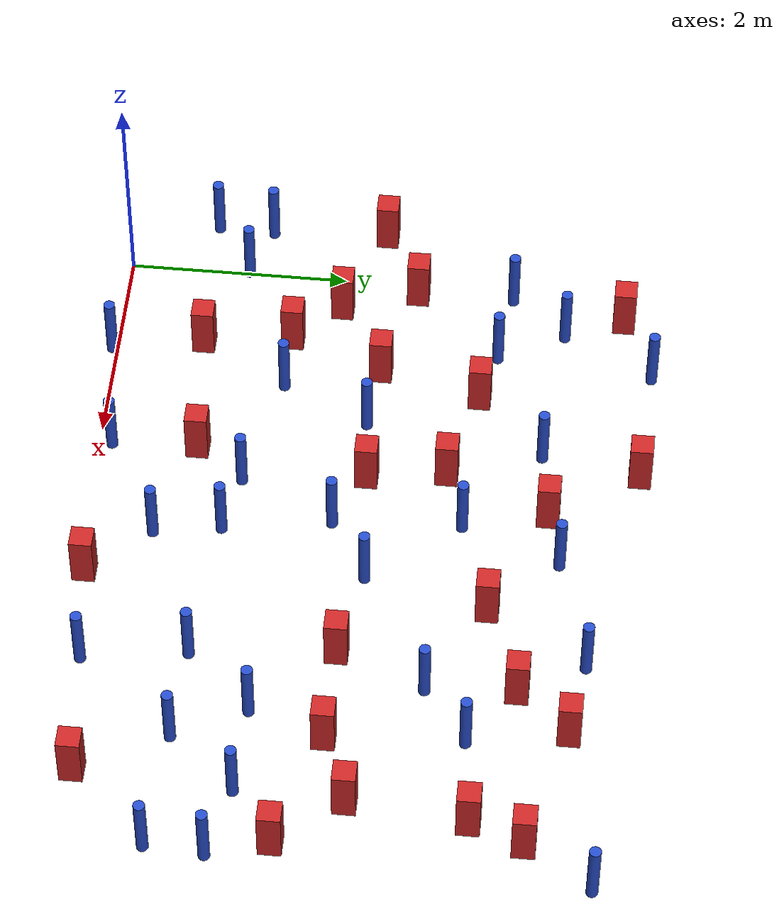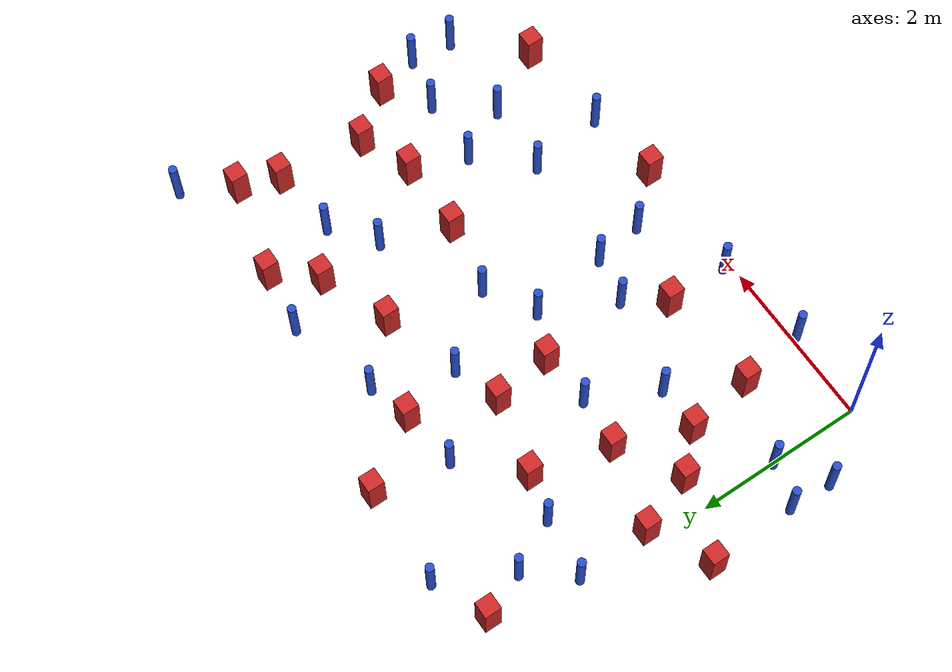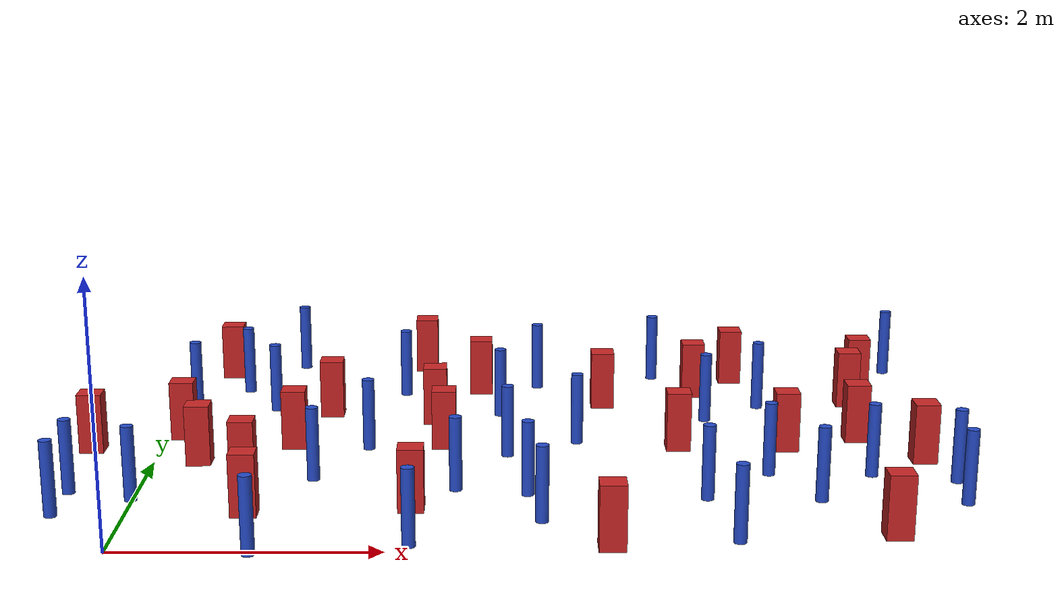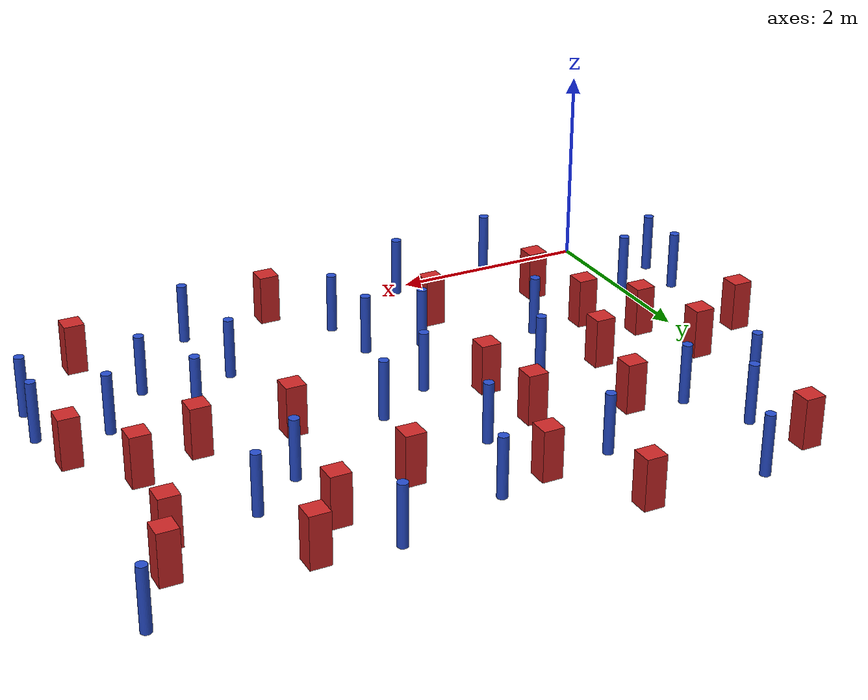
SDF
<sdf version="1.6">
 <model name="dense_47">
  <model name="square_post_obstacle0">
   <static>true</static>
   <pose>2.14950272493 0.887067691015 -6.11067671241e-07 -5.50515727128e-06 -8.79689657224e-07 2.37013304536e-05</pose>
   <link name="link">
    <pose>0 0 0.25 0 -0 0</pose>
    <inertial>
     <mass>100</mass>
     <inertia>
      <ixx>0.166667</ixx>
      <ixy>0</ixy>
      <ixz>0</ixz>
      <iyy>0.166667</iyy>
      <iyz>0</iyz>
      <izz>0.166667</izz>
     </inertia>
    </inertial>
    <collision name="collision"><geometry><box><size>.2 .2 .5</size></box></geometry></collision>
    <visual name="visual">
     <geometry><box><size>.2 .2 .5</size></box></geometry>
     <material>
      <script><name>Gazebo/Red</name><uri>file://media/materials/scripts/gazebo.material</uri></script>
     </material>
    </visual>
   </link>
  </model>
  <model name="pole_obstacle7">
   <static>true</static>
   <pose>0.109177409694 3.56442572552 -9.47619616065e-06 5.49618799737e-07 2.36310414059e-07 -1.550905348e-07</pose>
   <link name="link">
    <pose>0 0 0.3 0 -0 0</pose>
    <inertial>
     <mass>1</mass>
     <inertia><ixx>0.145833</ixx><ixy>0</ixy><ixz>0</ixz><iyy>0.145833</iyy><iyz>0</iyz><izz>0.125</izz></inertia>
    </inertial>
    <collision name="collision">
     <geometry><cylinder><radius>0.05</radius><length>.6</length></cylinder></geometry>
    </collision>
    <visual name="visual">
     <geometry><cylinder><radius>0.05</radius><length>.6</length></cylinder></geometry>
     <material>
      <script><name>Gazebo/Blue</name><uri>file://media/materials/scripts/gazebo.material</uri></script>
     </material>
    </visual>
   </link>
  </model>
  <model name="pole_obstacle8">
   <static>true</static>
   <pose>4.41853651223 1.09801838335 -9.47619616065e-06 5.49618799738e-07 2.36310414071e-07 -1.55090534796e-07</pose>
   <link name="link">
    <pose>0 0 0.3 0 -0 0</pose>
    <inertial>
     <mass>1</mass>
     <inertia><ixx>0.145833</ixx><ixy>0</ixy><ixz>0</ixz><iyy>0.145833</iyy><iyz>0</iyz><izz>0.125</izz></inertia>
    </inertial>
    <collision name="collision">
     <geometry><cylinder><radius>0.05</radius><length>.6</length></cylinder></geometry>
    </collision>
    <visual name="visual">
     <geometry><cylinder><radius>0.05</radius><length>.6</length></cylinder></geometry>
     <material>
      <script><name>Gazebo/Blue</name><uri>file://media/materials/scripts/gazebo.material</uri></script>
     </material>
    </visual>
   </link>
  </model>
  <model name="square_post_obstacle24">
   <static>true</static>
   <pose>4.30198293495 2.35617730267 -6.11067671241e-07 -5.50515727128e-06 -8.79689657224e-07 2.37013304536e-05</pose>
   <link name="link">
    <pose>0 0 0.25 0 -0 0</pose>
    <inertial>
     <mass>100</mass>
     <inertia>
      <ixx>0.166667</ixx>
      <ixy>0</ixy>
      <ixz>0</ixz>
      <iyy>0.166667</iyy>
      <iyz>0</iyz>
      <izz>0.166667</izz>
     </inertia>
    </inertial>
    <collision name="collision"><geometry><box><size>.2 .2 .5</size></box></geometry></collision>
    <visual name="visual">
     <geometry><box><size>.2 .2 .5</size></box></geometry>
     <material>
      <script><name>Gazebo/Red</name><uri>file://media/materials/scripts/gazebo.material</uri></script>
     </material>
    </visual>
   </link>
  </model>
  <model name="square_post_obstacle27">
   <static>true</static>
   <pose>0.303023351756 4.59528940576 -6.11067671241e-07 -5.50515727128e-06 -8.79689657224e-07 2.37013304536e-05</pose>
   <link name="link">
    <pose>0 0 0.25 0 -0 0</pose>
    <inertial>
     <mass>100</mass>
     <inertia>
      <ixx>0.166667</ixx>
      <ixy>0</ixy>
      <ixz>0</ixz>
      <iyy>0.166667</iyy>
      <iyz>0</iyz>
      <izz>0.166667</izz>
     </inertia>
    </inertial>
    <collision name="collision"><geometry><box><size>.2 .2 .5</size></box></geometry></collision>
    <visual name="visual">
     <geometry><box><size>.2 .2 .5</size></box></geometry>
     <material>
      <script><name>Gazebo/Red</name><uri>file://media/materials/scripts/gazebo.material</uri></script>
     </material>
    </visual>
   </link>
  </model>
  <model name="square_post_obstacle28">
   <static>true</static>
   <pose>4.96574600344 4.38186019826 -6.11067671241e-07 -5.50515727128e-06 -8.79689657224e-07 2.37013304536e-05</pose>
   <link name="link">
    <pose>0 0 0.25 0 -0 0</pose>
    <inertial>
     <mass>100</mass>
     <inertia>
      <ixx>0.166667</ixx>
      <ixy>0</ixy>
      <ixz>0</ixz>
      <iyy>0.166667</iyy>
      <iyz>0</iyz>
      <izz>0.166667</izz>
     </inertia>
    </inertial>
    <collision name="collision"><geometry><box><size>.2 .2 .5</size></box></geometry></collision>
    <visual name="visual">
     <geometry><box><size>.2 .2 .5</size></box></geometry>
     <material>
      <script><name>Gazebo/Red</name><uri>file://media/materials/scripts/gazebo.material</uri></script>
     </material>
    </visual>
   </link>
  </model>
  <model name="pole_obstacle20">
   <static>true</static>
   <pose>2.82236221573 3.30809473298 -9.47619616065e-06 5.49618799737e-07 2.36310414051e-07 -1.55090534807e-07</pose>
   <link name="link">
    <pose>0 0 0.3 0 -0 0</pose>
    <inertial>
     <mass>1</mass>
     <inertia><ixx>0.145833</ixx><ixy>0</ixy><ixz>0</ixz><iyy>0.145833</iyy><iyz>0</iyz><izz>0.125</izz></inertia>
    </inertial>
    <collision name="collision">
     <geometry><cylinder><radius>0.05</radius><length>.6</length></cylinder></geometry>
    </collision>
    <visual name="visual">
     <geometry><cylinder><radius>0.05</radius><length>.6</length></cylinder></geometry>
     <material>
      <script><name>Gazebo/Blue</name><uri>file://media/materials/scripts/gazebo.material</uri></script>
     </material>
    </visual>
   </link>
  </model>
  <model name="pole_obstacle21">
   <static>true</static>
   <pose>1.96439052846 3.95553086636 -9.47619616065e-06 5.49618799737e-07 2.36310414062e-07 -1.55090534799e-07</pose>
   <link name="link">
    <pose>0 0 0.3 0 -0 0</pose>
    <inertial>
     <mass>1</mass>
     <inertia><ixx>0.145833</ixx><ixy>0</ixy><ixz>0</ixz><iyy>0.145833</iyy><iyz>0</iyz><izz>0.125</izz></inertia>
    </inertial>
    <collision name="collision">
     <geometry><cylinder><radius>0.05</radius><length>.6</length></cylinder></geometry>
    </collision>
    <visual name="visual">
     <geometry><cylinder><radius>0.05</radius><length>.6</length></cylinder></geometry>
     <material>
      <script><name>Gazebo/Blue</name><uri>file://media/materials/scripts/gazebo.material</uri></script>
     </material>
    </visual>
   </link>
  </model>
  <model name="pole_obstacle25">
   <static>true</static>
   <pose>3.03722277193 1.20850535161 -9.47619616065e-06 5.49618799737e-07 2.36310414072e-07 -1.55090534793e-07</pose>
   <link name="link">
    <pose>0 0 0.3 0 -0 0</pose>
    <inertial>
     <mass>1</mass>
     <inertia><ixx>0.145833</ixx><ixy>0</ixy><ixz>0</ixz><iyy>0.145833</iyy><iyz>0</iyz><izz>0.125</izz></inertia>
    </inertial>
    <collision name="collision">
     <geometry><cylinder><radius>0.05</radius><length>.6</length></cylinder></geometry>
    </collision>
    <visual name="visual">
     <geometry><cylinder><radius>0.05</radius><length>.6</length></cylinder></geometry>
     <material>
      <script><name>Gazebo/Blue</name><uri>file://media/materials/scripts/gazebo.material</uri></script>
     </material>
    </visual>
   </link>
  </model>
  <model name="square_post_obstacle34">
   <static>true</static>
   <pose>2.64815634647 4.05208043156 -6.11067671241e-07 -5.50515727128e-06 -8.79689657224e-07 2.37013304536e-05</pose>
   <link name="link">
    <pose>0 0 0.25 0 -0 0</pose>
    <inertial>
     <mass>100</mass>
     <inertia>
      <ixx>0.166667</ixx>
      <ixy>0</ixy>
      <ixz>0</ixz>
      <iyy>0.166667</iyy>
      <iyz>0</iyz>
      <izz>0.166667</izz>
     </inertia>
    </inertial>
    <collision name="collision"><geometry><box><size>.2 .2 .5</size></box></geometry></collision>
    <visual name="visual">
     <geometry><box><size>.2 .2 .5</size></box></geometry>
     <material>
      <script><name>Gazebo/Red</name><uri>file://media/materials/scripts/gazebo.material</uri></script>
     </material>
    </visual>
   </link>
  </model>
  <model name="pole_obstacle37">
   <static>true</static>
   <pose>0.829820177629 3.47332278502 -9.47619616065e-06 5.49618799737e-07 2.36310414066e-07 -1.55090534797e-07</pose>
   <link name="link">
    <pose>0 0 0.3 0 -0 0</pose>
    <inertial>
     <mass>1</mass>
     <inertia><ixx>0.145833</ixx><ixy>0</ixy><ixz>0</ixz><iyy>0.145833</iyy><iyz>0</iyz><izz>0.125</izz></inertia>
    </inertial>
    <collision name="collision">
     <geometry><cylinder><radius>0.05</radius><length>.6</length></cylinder></geometry>
    </collision>
    <visual name="visual">
     <geometry><cylinder><radius>0.05</radius><length>.6</length></cylinder></geometry>
     <material>
      <script><name>Gazebo/Blue</name><uri>file://media/materials/scripts/gazebo.material</uri></script>
     </material>
    </visual>
   </link>
  </model>
  <model name="square_post_obstacle39">
   <static>true</static>
   <pose>1.34331770689 3.34765384902 -6.11067671241e-07 -5.50515727128e-06 -8.79689657224e-07 2.37013304536e-05</pose>
   <link name="link">
    <pose>0 0 0.25 0 -0 0</pose>
    <inertial>
     <mass>100</mass>
     <inertia>
      <ixx>0.166667</ixx>
      <ixy>0</ixy>
      <ixz>0</ixz>
      <iyy>0.166667</iyy>
      <iyz>0</iyz>
      <izz>0.166667</izz>
     </inertia>
    </inertial>
    <collision name="collision"><geometry><box><size>.2 .2 .5</size></box></geometry></collision>
    <visual name="visual">
     <geometry><box><size>.2 .2 .5</size></box></geometry>
     <material>
      <script><name>Gazebo/Red</name><uri>file://media/materials/scripts/gazebo.material</uri></script>
     </material>
    </visual>
   </link>
  </model>
  <model name="pole_obstacle43">
   <static>true</static>
   <pose>2.88424724772 2.16712554743 -9.47619616065e-06 5.49618799737e-07 2.36310414051e-07 -1.55090534807e-07</pose>
   <link name="link">
    <pose>0 0 0.3 0 -0 0</pose>
    <inertial>
     <mass>1</mass>
     <inertia><ixx>0.145833</ixx><ixy>0</ixy><ixz>0</ixz><iyy>0.145833</iyy><iyz>0</iyz><izz>0.125</izz></inertia>
    </inertial>
    <collision name="collision">
     <geometry><cylinder><radius>0.05</radius><length>.6</length></cylinder></geometry>
    </collision>
    <visual name="visual">
     <geometry><cylinder><radius>0.05</radius><length>.6</length></cylinder></geometry>
     <material>
      <script><name>Gazebo/Blue</name><uri>file://media/materials/scripts/gazebo.material</uri></script>
     </material>
    </visual>
   </link>
  </model>
  <model name="pole_obstacle45">
   <static>true</static>
   <pose>1.03866609675 -0.046950758375 -9.47619616065e-06 5.49618799737e-07 2.36310414067e-07 -1.55090534796e-07</pose>
   <link name="link">
    <pose>0 0 0.3 0 -0 0</pose>
    <inertial>
     <mass>1</mass>
     <inertia><ixx>0.145833</ixx><ixy>0</ixy><ixz>0</ixz><iyy>0.145833</iyy><iyz>0</iyz><izz>0.125</izz></inertia>
    </inertial>
    <collision name="collision">
     <geometry><cylinder><radius>0.05</radius><length>.6</length></cylinder></geometry>
    </collision>
    <visual name="visual">
     <geometry><cylinder><radius>0.05</radius><length>.6</length></cylinder></geometry>
     <material>
      <script><name>Gazebo/Blue</name><uri>file://media/materials/scripts/gazebo.material</uri></script>
     </material>
    </visual>
   </link>
  </model>
  <model name="square_post_obstacle44">
   <static>true</static>
   <pose>3.73400157712 3.59948972033 -6.11067671241e-07 -5.50515727128e-06 -8.79689657224e-07 2.37013304536e-05</pose>
   <link name="link">
    <pose>0 0 0.25 0 -0 0</pose>
    <inertial>
     <mass>100</mass>
     <inertia>
      <ixx>0.166667</ixx>
      <ixy>0</ixy>
      <ixz>0</ixz>
      <iyy>0.166667</iyy>
      <iyz>0</iyz>
      <izz>0.166667</izz>
     </inertia>
    </inertial>
    <collision name="collision"><geometry><box><size>.2 .2 .5</size></box></geometry></collision>
    <visual name="visual">
     <geometry><box><size>.2 .2 .5</size></box></geometry>
     <material>
      <script><name>Gazebo/Red</name><uri>file://media/materials/scripts/gazebo.material</uri></script>
     </material>
    </visual>
   </link>
  </model>
  <model name="square_post_obstacle52">
   <static>true</static>
   <pose>5.82720724488 2.58055464739 -6.11067671241e-07 -5.50515727128e-06 -8.79689657224e-07 2.37013304536e-05</pose>
   <link name="link">
    <pose>0 0 0.25 0 -0 0</pose>
    <inertial>
     <mass>100</mass>
     <inertia>
      <ixx>0.166667</ixx>
      <ixy>0</ixy>
      <ixz>0</ixz>
      <iyy>0.166667</iyy>
      <iyz>0</iyz>
      <izz>0.166667</izz>
     </inertia>
    </inertial>
    <collision name="collision"><geometry><box><size>.2 .2 .5</size></box></geometry></collision>
    <visual name="visual">
     <geometry><box><size>.2 .2 .5</size></box></geometry>
     <material>
      <script><name>Gazebo/Red</name><uri>file://media/materials/scripts/gazebo.material</uri></script>
     </material>
    </visual>
   </link>
  </model>
  <model name="square_post_obstacle57">
   <static>true</static>
   <pose>0.138514433468 2.68636189492 -6.11067671241e-07 -5.50515727128e-06 -8.79689657224e-07 2.37013304536e-05</pose>
   <link name="link">
    <pose>0 0 0.25 0 -0 0</pose>
    <inertial>
     <mass>100</mass>
     <inertia>
      <ixx>0.166667</ixx>
      <ixy>0</ixy>
      <ixz>0</ixz>
      <iyy>0.166667</iyy>
      <iyz>0</iyz>
      <izz>0.166667</izz>
     </inertia>
    </inertial>
    <collision name="collision"><geometry><box><size>.2 .2 .5</size></box></geometry></collision>
    <visual name="visual">
     <geometry><box><size>.2 .2 .5</size></box></geometry>
     <material>
      <script><name>Gazebo/Red</name><uri>file://media/materials/scripts/gazebo.material</uri></script>
     </material>
    </visual>
   </link>
  </model>
  <model name="pole_obstacle60">
   <static>true</static>
   <pose>1.34278115596 1.57324011732 -9.47619616065e-06 5.49618799737e-07 2.36310414065e-07 -1.55090534798e-07</pose>
   <link name="link">
    <pose>0 0 0.3 0 -0 0</pose>
    <inertial>
     <mass>1</mass>
     <inertia><ixx>0.145833</ixx><ixy>0</ixy><ixz>0</ixz><iyy>0.145833</iyy><iyz>0</iyz><izz>0.125</izz></inertia>
    </inertial>
    <collision name="collision">
     <geometry><cylinder><radius>0.05</radius><length>.6</length></cylinder></geometry>
    </collision>
    <visual name="visual">
     <geometry><cylinder><radius>0.05</radius><length>.6</length></cylinder></geometry>
     <material>
      <script><name>Gazebo/Blue</name><uri>file://media/materials/scripts/gazebo.material</uri></script>
     </material>
    </visual>
   </link>
  </model>
  <model name="square_post_obstacle64">
   <static>true</static>
   <pose>5.71152525341 0.291582715641 -6.11067671241e-07 -5.50515727128e-06 -8.79689657224e-07 2.37013304536e-05</pose>
   <link name="link">
    <pose>0 0 0.25 0 -0 0</pose>
    <inertial>
     <mass>100</mass>
     <inertia>
      <ixx>0.166667</ixx>
      <ixy>0</ixy>
      <ixz>0</ixz>
      <iyy>0.166667</iyy>
      <iyz>0</iyz>
      <izz>0.166667</izz>
     </inertia>
    </inertial>
    <collision name="collision"><geometry><box><size>.2 .2 .5</size></box></geometry></collision>
    <visual name="visual">
     <geometry><box><size>.2 .2 .5</size></box></geometry>
     <material>
      <script><name>Gazebo/Red</name><uri>file://media/materials/scripts/gazebo.material</uri></script>
     </material>
    </visual>
   </link>
  </model>
  <model name="pole_obstacle66">
   <static>true</static>
   <pose>0.947929157784 4.87894180601 -9.47619616065e-06 5.49618799737e-07 2.36310414065e-07 -1.55090534796e-07</pose>
   <link name="link">
    <pose>0 0 0.3 0 -0 0</pose>
    <inertial>
     <mass>1</mass>
     <inertia><ixx>0.145833</ixx><ixy>0</ixy><ixz>0</ixz><iyy>0.145833</iyy><iyz>0</iyz><izz>0.125</izz></inertia>
    </inertial>
    <collision name="collision">
     <geometry><cylinder><radius>0.05</radius><length>.6</length></cylinder></geometry>
    </collision>
    <visual name="visual">
     <geometry><cylinder><radius>0.05</radius><length>.6</length></cylinder></geometry>
     <material>
      <script><name>Gazebo/Blue</name><uri>file://media/materials/scripts/gazebo.material</uri></script>
     </material>
    </visual>
   </link>
  </model>
  <model name="square_post_obstacle72">
   <static>true</static>
   <pose>3.62497617091 0.0828882321645 -6.11067671241e-07 -5.50515727128e-06 -8.79689657224e-07 2.37013304536e-05</pose>
   <link name="link">
    <pose>0 0 0.25 0 -0 0</pose>
    <inertial>
     <mass>100</mass>
     <inertia>
      <ixx>0.166667</ixx>
      <ixy>0</ixy>
      <ixz>0</ixz>
      <iyy>0.166667</iyy>
      <iyz>0</iyz>
      <izz>0.166667</izz>
     </inertia>
    </inertial>
    <collision name="collision"><geometry><box><size>.2 .2 .5</size></box></geometry></collision>
    <visual name="visual">
     <geometry><box><size>.2 .2 .5</size></box></geometry>
     <material>
      <script><name>Gazebo/Red</name><uri>file://media/materials/scripts/gazebo.material</uri></script>
     </material>
    </visual>
   </link>
  </model>
  <model name="square_post_obstacle75">
   <static>true</static>
   <pose>2.35403181394 2.42062252915 -6.11067671241e-07 -5.50515727128e-06 -8.79689657224e-07 2.37013304536e-05</pose>
   <link name="link">
    <pose>0 0 0.25 0 -0 0</pose>
    <inertial>
     <mass>100</mass>
     <inertia>
      <ixx>0.166667</ixx>
      <ixy>0</ixy>
      <ixz>0</ixz>
      <iyy>0.166667</iyy>
      <iyz>0</iyz>
      <izz>0.166667</izz>
     </inertia>
    </inertial>
    <collision name="collision"><geometry><box><size>.2 .2 .5</size></box></geometry></collision>
    <visual name="visual">
     <geometry><box><size>.2 .2 .5</size></box></geometry>
     <material>
      <script><name>Gazebo/Red</name><uri>file://media/materials/scripts/gazebo.material</uri></script>
     </material>
    </visual>
   </link>
  </model>
  <model name="pole_obstacle70">
   <static>true</static>
   <pose>3.13463753691 0.613771474882 -9.47619616065e-06 5.49618799738e-07 2.36310414075e-07 -1.55090534793e-07</pose>
   <link name="link">
    <pose>0 0 0.3 0 -0 0</pose>
    <inertial>
     <mass>1</mass>
     <inertia><ixx>0.145833</ixx><ixy>0</ixy><ixz>0</ixz><iyy>0.145833</iyy><iyz>0</iyz><izz>0.125</izz></inertia>
    </inertial>
    <collision name="collision">
     <geometry><cylinder><radius>0.05</radius><length>.6</length></cylinder></geometry>
    </collision>
    <visual name="visual">
     <geometry><cylinder><radius>0.05</radius><length>.6</length></cylinder></geometry>
     <material>
      <script><name>Gazebo/Blue</name><uri>file://media/materials/scripts/gazebo.material</uri></script>
     </material>
    </visual>
   </link>
  </model>
  <model name="pole_obstacle72">
   <static>true</static>
   <pose>5.78718243944 1.64303371063 -9.47619616065e-06 5.49618799738e-07 2.36310414071e-07 -1.55090534796e-07</pose>
   <link name="link">
    <pose>0 0 0.3 0 -0 0</pose>
    <inertial>
     <mass>1</mass>
     <inertia><ixx>0.145833</ixx><ixy>0</ixy><ixz>0</ixz><iyy>0.145833</iyy><iyz>0</iyz><izz>0.125</izz></inertia>
    </inertial>
    <collision name="collision">
     <geometry><cylinder><radius>0.05</radius><length>.6</length></cylinder></geometry>
    </collision>
    <visual name="visual">
     <geometry><cylinder><radius>0.05</radius><length>.6</length></cylinder></geometry>
     <material>
      <script><name>Gazebo/Blue</name><uri>file://media/materials/scripts/gazebo.material</uri></script>
     </material>
    </visual>
   </link>
  </model>
  <model name="pole_obstacle75">
   <static>true</static>
   <pose>6.43466897531 1.48794062232 -9.47619616065e-06 5.49618799738e-07 2.36310414071e-07 -1.55090534796e-07</pose>
   <link name="link">
    <pose>0 0 0.3 0 -0 0</pose>
    <inertial>
     <mass>1</mass>
     <inertia><ixx>0.145833</ixx><ixy>0</ixy><ixz>0</ixz><iyy>0.145833</iyy><iyz>0</iyz><izz>0.125</izz></inertia>
    </inertial>
    <collision name="collision">
     <geometry><cylinder><radius>0.05</radius><length>.6</length></cylinder></geometry>
    </collision>
    <visual name="visual">
     <geometry><cylinder><radius>0.05</radius><length>.6</length></cylinder></geometry>
     <material>
      <script><name>Gazebo/Blue</name><uri>file://media/materials/scripts/gazebo.material</uri></script>
     </material>
    </visual>
   </link>
  </model>
  <model name="pole_obstacle99">
   <static>true</static>
   <pose>-0.527390690888 1.26679269879 -9.47619616065e-06 5.49618799737e-07 2.36310414066e-07 -1.55090534797e-07</pose>
   <link name="link">
    <pose>0 0 0.3 0 -0 0</pose>
    <inertial>
     <mass>1</mass>
     <inertia><ixx>0.145833</ixx><ixy>0</ixy><ixz>0</ixz><iyy>0.145833</iyy><iyz>0</iyz><izz>0.125</izz></inertia>
    </inertial>
    <collision name="collision">
     <geometry><cylinder><radius>0.05</radius><length>.6</length></cylinder></geometry>
    </collision>
    <visual name="visual">
     <geometry><cylinder><radius>0.05</radius><length>.6</length></cylinder></geometry>
     <material>
      <script><name>Gazebo/Blue</name><uri>file://media/materials/scripts/gazebo.material</uri></script>
     </material>
    </visual>
   </link>
  </model>
  <model name="pole_obstacle102">
   <static>true</static>
   <pose>4.55397835697 0.181711562981 -9.47619616065e-06 5.49618799738e-07 2.36310414072e-07 -1.55090534795e-07</pose>
   <link name="link">
    <pose>0 0 0.3 0 -0 0</pose>
    <inertial>
     <mass>1</mass>
     <inertia><ixx>0.145833</ixx><ixy>0</ixy><ixz>0</ixz><iyy>0.145833</iyy><iyz>0</iyz><izz>0.125</izz></inertia>
    </inertial>
    <collision name="collision">
     <geometry><cylinder><radius>0.05</radius><length>.6</length></cylinder></geometry>
    </collision>
    <visual name="visual">
     <geometry><cylinder><radius>0.05</radius><length>.6</length></cylinder></geometry>
     <material>
      <script><name>Gazebo/Blue</name><uri>file://media/materials/scripts/gazebo.material</uri></script>
     </material>
    </visual>
   </link>
  </model>
  <model name="square_post_obstacle91">
   <static>true</static>
   <pose>2.25764990404 3.12575136851 -6.11067671241e-07 -5.50515727128e-06 -8.79689657224e-07 2.37013304536e-05</pose>
   <link name="link">
    <pose>0 0 0.25 0 -0 0</pose>
    <inertial>
     <mass>100</mass>
     <inertia>
      <ixx>0.166667</ixx>
      <ixy>0</ixy>
      <ixz>0</ixz>
      <iyy>0.166667</iyy>
      <iyz>0</iyz>
      <izz>0.166667</izz>
     </inertia>
    </inertial>
    <collision name="collision"><geometry><box><size>.2 .2 .5</size></box></geometry></collision>
    <visual name="visual">
     <geometry><box><size>.2 .2 .5</size></box></geometry>
     <material>
      <script><name>Gazebo/Red</name><uri>file://media/materials/scripts/gazebo.material</uri></script>
     </material>
    </visual>
   </link>
  </model>
  <model name="pole_obstacle108">
   <static>true</static>
   <pose>5.29012515883 1.05420977932 -9.47619616065e-06 5.49618799738e-07 2.36310414071e-07 -1.55090534796e-07</pose>
   <link name="link">
    <pose>0 0 0.3 0 -0 0</pose>
    <inertial>
     <mass>1</mass>
     <inertia><ixx>0.145833</ixx><ixy>0</ixy><ixz>0</ixz><iyy>0.145833</iyy><iyz>0</iyz><izz>0.125</izz></inertia>
    </inertial>
    <collision name="collision">
     <geometry><cylinder><radius>0.05</radius><length>.6</length></cylinder></geometry>
    </collision>
    <visual name="visual">
     <geometry><cylinder><radius>0.05</radius><length>.6</length></cylinder></geometry>
     <material>
      <script><name>Gazebo/Blue</name><uri>file://media/materials/scripts/gazebo.material</uri></script>
     </material>
    </visual>
   </link>
  </model>
  <model name="square_post_obstacle105">
   <static>true</static>
   <pose>1.10638772678 2.43019626495 -6.11067671241e-07 -5.50515727128e-06 -8.79689657224e-07 2.37013304536e-05</pose>
   <link name="link">
    <pose>0 0 0.25 0 -0 0</pose>
    <inertial>
     <mass>100</mass>
     <inertia>
      <ixx>0.166667</ixx>
      <ixy>0</ixy>
      <ixz>0</ixz>
      <iyy>0.166667</iyy>
      <iyz>0</iyz>
      <izz>0.166667</izz>
     </inertia>
    </inertial>
    <collision name="collision"><geometry><box><size>.2 .2 .5</size></box></geometry></collision>
    <visual name="visual">
     <geometry><box><size>.2 .2 .5</size></box></geometry>
     <material>
      <script><name>Gazebo/Red</name><uri>file://media/materials/scripts/gazebo.material</uri></script>
     </material>
    </visual>
   </link>
  </model>
  <model name="square_post_obstacle109">
   <static>true</static>
   <pose>2.12340740426 4.83334186187 -6.11067671241e-07 -5.50515727128e-06 -8.79689657224e-07 2.37013304536e-05</pose>
   <link name="link">
    <pose>0 0 0.25 0 -0 0</pose>
    <inertial>
     <mass>100</mass>
     <inertia>
      <ixx>0.166667</ixx>
      <ixy>0</ixy>
      <ixz>0</ixz>
      <iyy>0.166667</iyy>
      <iyz>0</iyz>
      <izz>0.166667</izz>
     </inertia>
    </inertial>
    <collision name="collision"><geometry><box><size>.2 .2 .5</size></box></geometry></collision>
    <visual name="visual">
     <geometry><box><size>.2 .2 .5</size></box></geometry>
     <material>
      <script><name>Gazebo/Red</name><uri>file://media/materials/scripts/gazebo.material</uri></script>
     </material>
    </visual>
   </link>
  </model>
  <model name="pole_obstacle122">
   <static>true</static>
   <pose>3.46630462649 2.51066067518 -9.47619616065e-06 5.49618799737e-07 2.36310414051e-07 -1.55090534807e-07</pose>
   <link name="link">
    <pose>0 0 0.3 0 -0 0</pose>
    <inertial>
     <mass>1</mass>
     <inertia><ixx>0.145833</ixx><ixy>0</ixy><ixz>0</ixz><iyy>0.145833</iyy><iyz>0</iyz><izz>0.125</izz></inertia>
    </inertial>
    <collision name="collision">
     <geometry><cylinder><radius>0.05</radius><length>.6</length></cylinder></geometry>
    </collision>
    <visual name="visual">
     <geometry><cylinder><radius>0.05</radius><length>.6</length></cylinder></geometry>
     <material>
      <script><name>Gazebo/Blue</name><uri>file://media/materials/scripts/gazebo.material</uri></script>
     </material>
    </visual>
   </link>
  </model>
  <model name="pole_obstacle127">
   <static>true</static>
   <pose>4.61040201455 3.13350236156 -9.47619616065e-06 5.49618799738e-07 2.36310414051e-07 -1.55090534805e-07</pose>
   <link name="link">
    <pose>0 0 0.3 0 -0 0</pose>
    <inertial>
     <mass>1</mass>
     <inertia><ixx>0.145833</ixx><ixy>0</ixy><ixz>0</ixz><iyy>0.145833</iyy><iyz>0</iyz><izz>0.125</izz></inertia>
    </inertial>
    <collision name="collision">
     <geometry><cylinder><radius>0.05</radius><length>.6</length></cylinder></geometry>
    </collision>
    <visual name="visual">
     <geometry><cylinder><radius>0.05</radius><length>.6</length></cylinder></geometry>
     <material>
      <script><name>Gazebo/Blue</name><uri>file://media/materials/scripts/gazebo.material</uri></script>
     </material>
    </visual>
   </link>
  </model>
  <model name="square_post_obstacle113">
   <static>true</static>
   <pose>0.784382680492 1.59145490835 -6.11067671241e-07 -5.50515727128e-06 -8.79689657224e-07 2.37013304536e-05</pose>
   <link name="link">
    <pose>0 0 0.25 0 -0 0</pose>
    <inertial>
     <mass>100</mass>
     <inertia>
      <ixx>0.166667</ixx>
      <ixy>0</ixy>
      <ixz>0</ixz>
      <iyy>0.166667</iyy>
      <iyz>0</iyz>
      <izz>0.166667</izz>
     </inertia>
    </inertial>
    <collision name="collision"><geometry><box><size>.2 .2 .5</size></box></geometry></collision>
    <visual name="visual">
     <geometry><box><size>.2 .2 .5</size></box></geometry>
     <material>
      <script><name>Gazebo/Red</name><uri>file://media/materials/scripts/gazebo.material</uri></script>
     </material>
    </visual>
   </link>
  </model>
  <model name="pole_obstacle128">
   <static>true</static>
   <pose>6.47933604878 4.66308630779 -9.47619616065e-06 5.49618799737e-07 2.36310414037e-07 -1.55090534814e-07</pose>
   <link name="link">
    <pose>0 0 0.3 0 -0 0</pose>
    <inertial>
     <mass>1</mass>
     <inertia><ixx>0.145833</ixx><ixy>0</ixy><ixz>0</ixz><iyy>0.145833</iyy><iyz>0</iyz><izz>0.125</izz></inertia>
    </inertial>
    <collision name="collision">
     <geometry><cylinder><radius>0.05</radius><length>.6</length></cylinder></geometry>
    </collision>
    <visual name="visual">
     <geometry><cylinder><radius>0.05</radius><length>.6</length></cylinder></geometry>
     <material>
      <script><name>Gazebo/Blue</name><uri>file://media/materials/scripts/gazebo.material</uri></script>
     </material>
    </visual>
   </link>
  </model>
  <model name="square_post_obstacle114">
   <static>true</static>
   <pose>5.93451149578 3.61341287417 -6.11067671241e-07 -5.50515727128e-06 -8.79689657224e-07 2.37013304536e-05</pose>
   <link name="link">
    <pose>0 0 0.25 0 -0 0</pose>
    <inertial>
     <mass>100</mass>
     <inertia>
      <ixx>0.166667</ixx>
      <ixy>0</ixy>
      <ixz>0</ixz>
      <iyy>0.166667</iyy>
      <iyz>0</iyz>
      <izz>0.166667</izz>
     </inertia>
    </inertial>
    <collision name="collision"><geometry><box><size>.2 .2 .5</size></box></geometry></collision>
    <visual name="visual">
     <geometry><box><size>.2 .2 .5</size></box></geometry>
     <material>
      <script><name>Gazebo/Red</name><uri>file://media/materials/scripts/gazebo.material</uri></script>
     </material>
    </visual>
   </link>
  </model>
  <model name="pole_obstacle136">
   <static>true</static>
   <pose>-0.013341774322 1.09711411534 -9.47619616065e-06 5.49618799737e-07 2.36310414047e-07 -1.55090534808e-07</pose>
   <link name="link">
    <pose>0 0 0.3 0 -0 0</pose>
    <inertial>
     <mass>1</mass>
     <inertia><ixx>0.145833</ixx><ixy>0</ixy><ixz>0</ixz><iyy>0.145833</iyy><iyz>0</iyz><izz>0.125</izz></inertia>
    </inertial>
    <collision name="collision">
     <geometry><cylinder><radius>0.05</radius><length>.6</length></cylinder></geometry>
    </collision>
    <visual name="visual">
     <geometry><cylinder><radius>0.05</radius><length>.6</length></cylinder></geometry>
     <material>
      <script><name>Gazebo/Blue</name><uri>file://media/materials/scripts/gazebo.material</uri></script>
     </material>
    </visual>
   </link>
  </model>
  <model name="pole_obstacle138">
   <static>true</static>
   <pose>4.24809309247 4.48216020755 -9.47619616065e-06 5.49618799737e-07 2.36310414037e-07 -1.55090534814e-07</pose>
   <link name="link">
    <pose>0 0 0.3 0 -0 0</pose>
    <inertial>
     <mass>1</mass>
     <inertia><ixx>0.145833</ixx><ixy>0</ixy><ixz>0</ixz><iyy>0.145833</iyy><iyz>0</iyz><izz>0.125</izz></inertia>
    </inertial>
    <collision name="collision">
     <geometry><cylinder><radius>0.05</radius><length>.6</length></cylinder></geometry>
    </collision>
    <visual name="visual">
     <geometry><cylinder><radius>0.05</radius><length>.6</length></cylinder></geometry>
     <material>
      <script><name>Gazebo/Blue</name><uri>file://media/materials/scripts/gazebo.material</uri></script>
     </material>
    </visual>
   </link>
  </model>
  <model name="pole_obstacle142">
   <static>true</static>
   <pose>5.11747221874 3.5224183653 -9.47619616065e-06 5.49618799738e-07 2.36310414051e-07 -1.55090534805e-07</pose>
   <link name="link">
    <pose>0 0 0.3 0 -0 0</pose>
    <inertial>
     <mass>1</mass>
     <inertia><ixx>0.145833</ixx><ixy>0</ixy><ixz>0</ixz><iyy>0.145833</iyy><iyz>0</iyz><izz>0.125</izz></inertia>
    </inertial>
    <collision name="collision">
     <geometry><cylinder><radius>0.05</radius><length>.6</length></cylinder></geometry>
    </collision>
    <visual name="visual">
     <geometry><cylinder><radius>0.05</radius><length>.6</length></cylinder></geometry>
     <material>
      <script><name>Gazebo/Blue</name><uri>file://media/materials/scripts/gazebo.material</uri></script>
     </material>
    </visual>
   </link>
  </model>
  <model name="pole_obstacle147">
   <static>true</static>
   <pose>2.16731736398 0.113767308444 -9.47619616065e-06 5.49618799737e-07 2.36310414066e-07 -1.55090534798e-07</pose>
   <link name="link">
    <pose>0 0 0.3 0 -0 0</pose>
    <inertial>
     <mass>1</mass>
     <inertia><ixx>0.145833</ixx><ixy>0</ixy><ixz>0</ixz><iyy>0.145833</iyy><iyz>0</iyz><izz>0.125</izz></inertia>
    </inertial>
    <collision name="collision">
     <geometry><cylinder><radius>0.05</radius><length>.6</length></cylinder></geometry>
    </collision>
    <visual name="visual">
     <geometry><cylinder><radius>0.05</radius><length>.6</length></cylinder></geometry>
     <material>
      <script><name>Gazebo/Blue</name><uri>file://media/materials/scripts/gazebo.material</uri></script>
     </material>
    </visual>
   </link>
  </model>
  <model name="square_post_obstacle138">
   <static>true</static>
   <pose>6.27916279648 2.01748817516 -6.11067671241e-07 -5.50515727128e-06 -8.79689657224e-07 2.37013304536e-05</pose>
   <link name="link">
    <pose>0 0 0.25 0 -0 0</pose>
    <inertial>
     <mass>100</mass>
     <inertia>
      <ixx>0.166667</ixx>
      <ixy>0</ixy>
      <ixz>0</ixz>
      <iyy>0.166667</iyy>
      <iyz>0</iyz>
      <izz>0.166667</izz>
     </inertia>
    </inertial>
    <collision name="collision"><geometry><box><size>.2 .2 .5</size></box></geometry></collision>
    <visual name="visual">
     <geometry><box><size>.2 .2 .5</size></box></geometry>
     <material>
      <script><name>Gazebo/Red</name><uri>file://media/materials/scripts/gazebo.material</uri></script>
     </material>
    </visual>
   </link>
  </model>
  <model name="pole_obstacle152">
   <static>true</static>
   <pose>3.16507642304 4.18569952789 -9.47619616065e-06 5.49618799738e-07 2.3631041406e-07 -1.55090534801e-07</pose>
   <link name="link">
    <pose>0 0 0.3 0 -0 0</pose>
    <inertial>
     <mass>1</mass>
     <inertia><ixx>0.145833</ixx><ixy>0</ixy><ixz>0</ixz><iyy>0.145833</iyy><iyz>0</iyz><izz>0.125</izz></inertia>
    </inertial>
    <collision name="collision">
     <geometry><cylinder><radius>0.05</radius><length>.6</length></cylinder></geometry>
    </collision>
    <visual name="visual">
     <geometry><cylinder><radius>0.05</radius><length>.6</length></cylinder></geometry>
     <material>
      <script><name>Gazebo/Blue</name><uri>file://media/materials/scripts/gazebo.material</uri></script>
     </material>
    </visual>
   </link>
  </model>
  <model name="pole_obstacle153">
   <static>true</static>
   <pose>4.96935872024 1.67781594864 -9.47619616065e-06 5.49618799738e-07 2.36310414071e-07 -1.55090534796e-07</pose>
   <link name="link">
    <pose>0 0 0.3 0 -0 0</pose>
    <inertial>
     <mass>1</mass>
     <inertia><ixx>0.145833</ixx><ixy>0</ixy><ixz>0</ixz><iyy>0.145833</iyy><iyz>0</iyz><izz>0.125</izz></inertia>
    </inertial>
    <collision name="collision">
     <geometry><cylinder><radius>0.05</radius><length>.6</length></cylinder></geometry>
    </collision>
    <visual name="visual">
     <geometry><cylinder><radius>0.05</radius><length>.6</length></cylinder></geometry>
     <material>
      <script><name>Gazebo/Blue</name><uri>file://media/materials/scripts/gazebo.material</uri></script>
     </material>
    </visual>
   </link>
  </model>
  <model name="square_post_obstacle147">
   <static>true</static>
   <pose>6.11064458215 4.08158015176 -6.11067671241e-07 -5.50515727128e-06 -8.79689657224e-07 2.37013304536e-05</pose>
   <link name="link">
    <pose>0 0 0.25 0 -0 0</pose>
    <inertial>
     <mass>100</mass>
     <inertia>
      <ixx>0.166667</ixx>
      <ixy>0</ixy>
      <ixz>0</ixz>
      <iyy>0.166667</iyy>
      <iyz>0</iyz>
      <izz>0.166667</izz>
     </inertia>
    </inertial>
    <collision name="collision"><geometry><box><size>.2 .2 .5</size></box></geometry></collision>
    <visual name="visual">
     <geometry><box><size>.2 .2 .5</size></box></geometry>
     <material>
      <script><name>Gazebo/Red</name><uri>file://media/materials/scripts/gazebo.material</uri></script>
     </material>
    </visual>
   </link>
  </model>
  <model name="square_post_obstacle155">
   <static>true</static>
   <pose>0.901484353481 0.786833599358 -6.11067671241e-07 -5.50515727128e-06 -8.79689657224e-07 2.37013304536e-05</pose>
   <link name="link">
    <pose>0 0 0.25 0 -0 0</pose>
    <inertial>
     <mass>100</mass>
     <inertia>
      <ixx>0.166667</ixx>
      <ixy>0</ixy>
      <ixz>0</ixz>
      <iyy>0.166667</iyy>
      <iyz>0</iyz>
      <izz>0.166667</izz>
     </inertia>
    </inertial>
    <collision name="collision"><geometry><box><size>.2 .2 .5</size></box></geometry></collision>
    <visual name="visual">
     <geometry><box><size>.2 .2 .5</size></box></geometry>
     <material>
      <script><name>Gazebo/Red</name><uri>file://media/materials/scripts/gazebo.material</uri></script>
     </material>
    </visual>
   </link>
  </model>
  <model name="pole_obstacle164">
   <static>true</static>
   <pose>1.7306188887 2.36081532727 -9.47619616065e-06 5.49618799737e-07 2.36310414062e-07 -1.55090534798e-07</pose>
   <link name="link">
    <pose>0 0 0.3 0 -0 0</pose>
    <inertial>
     <mass>1</mass>
     <inertia><ixx>0.145833</ixx><ixy>0</ixy><ixz>0</ixz><iyy>0.145833</iyy><iyz>0</iyz><izz>0.125</izz></inertia>
    </inertial>
    <collision name="collision">
     <geometry><cylinder><radius>0.05</radius><length>.6</length></cylinder></geometry>
    </collision>
    <visual name="visual">
     <geometry><cylinder><radius>0.05</radius><length>.6</length></cylinder></geometry>
     <material>
      <script><name>Gazebo/Blue</name><uri>file://media/materials/scripts/gazebo.material</uri></script>
     </material>
    </visual>
   </link>
  </model>
  <model name="square_post_obstacle159">
   <static>true</static>
   <pose>4.57440279329 3.9169239677 -6.11067671241e-07 -5.50515727128e-06 -8.79689657224e-07 2.37013304536e-05</pose>
   <link name="link">
    <pose>0 0 0.25 0 -0 0</pose>
    <inertial>
     <mass>100</mass>
     <inertia>
      <ixx>0.166667</ixx>
      <ixy>0</ixy>
      <ixz>0</ixz>
      <iyy>0.166667</iyy>
      <iyz>0</iyz>
      <izz>0.166667</izz>
     </inertia>
    </inertial>
    <collision name="collision"><geometry><box><size>.2 .2 .5</size></box></geometry></collision>
    <visual name="visual">
     <geometry><box><size>.2 .2 .5</size></box></geometry>
     <material>
      <script><name>Gazebo/Red</name><uri>file://media/materials/scripts/gazebo.material</uri></script>
     </material>
    </visual>
   </link>
  </model>
  <model name="pole_obstacle169">
   <static>true</static>
   <pose>0.51489567048 4.06574603866 -9.47619616065e-06 5.49618799737e-07 2.36310414064e-07 -1.55090534796e-07</pose>
   <link name="link">
    <pose>0 0 0.3 0 -0 0</pose>
    <inertial>
     <mass>1</mass>
     <inertia><ixx>0.145833</ixx><ixy>0</ixy><ixz>0</ixz><iyy>0.145833</iyy><iyz>0</iyz><izz>0.125</izz></inertia>
    </inertial>
    <collision name="collision">
     <geometry><cylinder><radius>0.05</radius><length>.6</length></cylinder></geometry>
    </collision>
    <visual name="visual">
     <geometry><cylinder><radius>0.05</radius><length>.6</length></cylinder></geometry>
     <material>
      <script><name>Gazebo/Blue</name><uri>file://media/materials/scripts/gazebo.material</uri></script>
     </material>
    </visual>
   </link>
  </model>
  <model name="pole_obstacle170">
   <static>true</static>
   <pose>-0.547225466535 0.749120927474 -9.47619616065e-06 5.49618799737e-07 2.36310414066e-07 -1.55090534796e-07</pose>
   <link name="link">
    <pose>0 0 0.3 0 -0 0</pose>
    <inertial>
     <mass>1</mass>
     <inertia><ixx>0.145833</ixx><ixy>0</ixy><ixz>0</ixz><iyy>0.145833</iyy><iyz>0</iyz><izz>0.125</izz></inertia>
    </inertial>
    <collision name="collision">
     <geometry><cylinder><radius>0.05</radius><length>.6</length></cylinder></geometry>
    </collision>
    <visual name="visual">
     <geometry><cylinder><radius>0.05</radius><length>.6</length></cylinder></geometry>
     <material>
      <script><name>Gazebo/Blue</name><uri>file://media/materials/scripts/gazebo.material</uri></script>
     </material>
    </visual>
   </link>
  </model>
  <model name="pole_obstacle172">
   <static>true</static>
   <pose>6.39584902277 0.975077648064 -9.47619616065e-06 5.49618799737e-07 2.36310414073e-07 -1.55090534792e-07</pose>
   <link name="link">
    <pose>0 0 0.3 0 -0 0</pose>
    <inertial>
     <mass>1</mass>
     <inertia><ixx>0.145833</ixx><ixy>0</ixy><ixz>0</ixz><iyy>0.145833</iyy><iyz>0</iyz><izz>0.125</izz></inertia>
    </inertial>
    <collision name="collision">
     <geometry><cylinder><radius>0.05</radius><length>.6</length></cylinder></geometry>
    </collision>
    <visual name="visual">
     <geometry><cylinder><radius>0.05</radius><length>.6</length></cylinder></geometry>
     <material>
      <script><name>Gazebo/Blue</name><uri>file://media/materials/scripts/gazebo.material</uri></script>
     </material>
    </visual>
   </link>
  </model>
  <model name="square_post_obstacle181">
   <static>true</static>
   <pose>0.373996824517 2.00773043244 -6.11067671241e-07 -5.50515727128e-06 -8.79689657224e-07 2.37013304536e-05</pose>
   <link name="link">
    <pose>0 0 0.25 0 -0 0</pose>
    <inertial>
     <mass>100</mass>
     <inertia>
      <ixx>0.166667</ixx>
      <ixy>0</ixy>
      <ixz>0</ixz>
      <iyy>0.166667</iyy>
      <iyz>0</iyz>
      <izz>0.166667</izz>
     </inertia>
    </inertial>
    <collision name="collision"><geometry><box><size>.2 .2 .5</size></box></geometry></collision>
    <visual name="visual">
     <geometry><box><size>.2 .2 .5</size></box></geometry>
     <material>
      <script><name>Gazebo/Red</name><uri>file://media/materials/scripts/gazebo.material</uri></script>
     </material>
    </visual>
   </link>
  </model>
  <model name="square_post_obstacle195">
   <static>true</static>
   <pose>5.19935821907 2.34052569864 -6.11067671241e-07 -5.50515727128e-06 -8.79689657224e-07 2.37013304536e-05</pose>
   <link name="link">
    <pose>0 0 0.25 0 -0 0</pose>
    <inertial>
     <mass>100</mass>
     <inertia>
      <ixx>0.166667</ixx>
      <ixy>0</ixy>
      <ixz>0</ixz>
      <iyy>0.166667</iyy>
      <iyz>0</iyz>
      <izz>0.166667</izz>
     </inertia>
    </inertial>
    <collision name="collision"><geometry><box><size>.2 .2 .5</size></box></geometry></collision>
    <visual name="visual">
     <geometry><box><size>.2 .2 .5</size></box></geometry>
     <material>
      <script><name>Gazebo/Red</name><uri>file://media/materials/scripts/gazebo.material</uri></script>
     </material>
    </visual>
   </link>
  </model>
  <model name="square_post_obstacle205">
   <static>true</static>
   <pose>-0.562648661012 2.33749811871 -6.11067671241e-07 -5.50515727128e-06 -8.79689657224e-07 2.37013304536e-05</pose>
   <link name="link">
    <pose>0 0 0.25 0 -0 0</pose>
    <inertial>
     <mass>100</mass>
     <inertia>
      <ixx>0.166667</ixx>
      <ixy>0</ixy>
      <ixz>0</ixz>
      <iyy>0.166667</iyy>
      <iyz>0</iyz>
      <izz>0.166667</izz>
     </inertia>
    </inertial>
    <collision name="collision"><geometry><box><size>.2 .2 .5</size></box></geometry></collision>
    <visual name="visual">
     <geometry><box><size>.2 .2 .5</size></box></geometry>
     <material>
      <script><name>Gazebo/Red</name><uri>file://media/materials/scripts/gazebo.material</uri></script>
     </material>
    </visual>
   </link>
  </model>
  <model name="pole_obstacle210">
   <static>true</static>
   <pose>2.47638408656 1.32104900405 -9.47619616065e-06 5.49618799737e-07 2.36310414072e-07 -1.55090534793e-07</pose>
   <link name="link">
    <pose>0 0 0.3 0 -0 0</pose>
    <inertial>
     <mass>1</mass>
     <inertia><ixx>0.145833</ixx><ixy>0</ixy><ixz>0</ixz><iyy>0.145833</iyy><iyz>0</iyz><izz>0.125</izz></inertia>
    </inertial>
    <collision name="collision">
     <geometry><cylinder><radius>0.05</radius><length>.6</length></cylinder></geometry>
    </collision>
    <visual name="visual">
     <geometry><cylinder><radius>0.05</radius><length>.6</length></cylinder></geometry>
     <material>
      <script><name>Gazebo/Blue</name><uri>file://media/materials/scripts/gazebo.material</uri></script>
     </material>
    </visual>
   </link>
  </model>
 </model>
</sdf>
